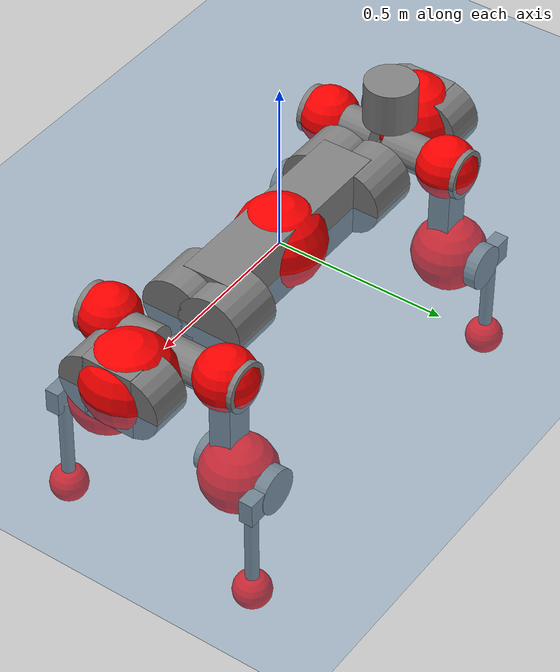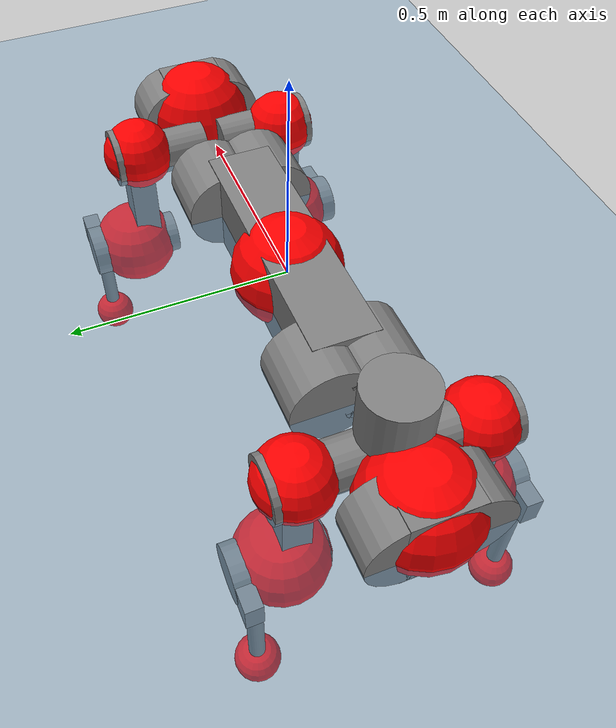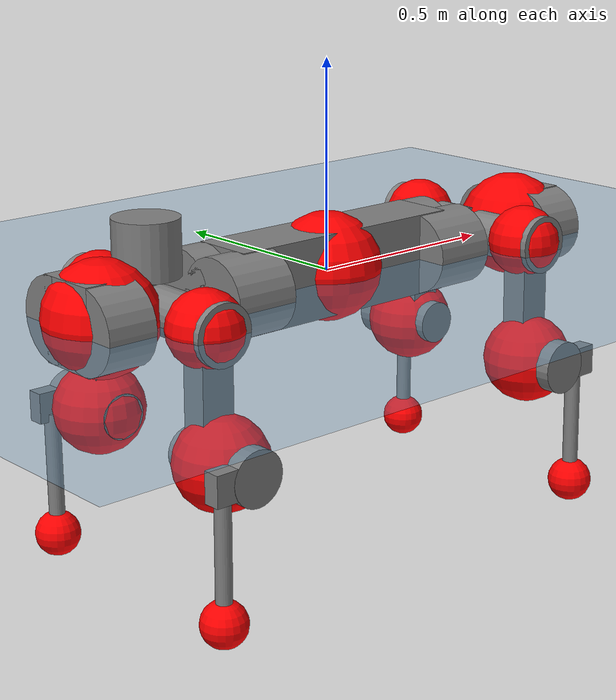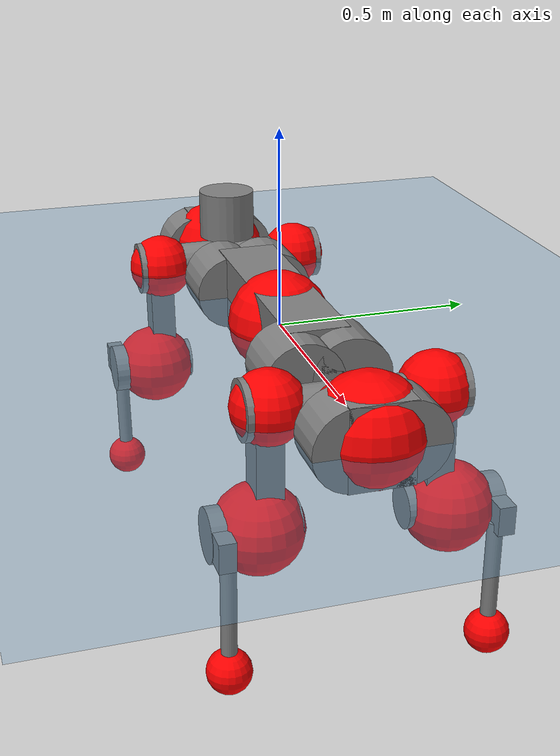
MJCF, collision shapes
<mujoco model="anymal_c">
  <compiler angle="radian" assetdir="assets" balanceinertia="true" inertiafromgeom="false"/>

  <option timestep="0.005" density="1.2" viscosity="2e-05"/>

  <size nkey="1"/>

  <visual>
    <quality shadowsize="8192"/>
    <map shadowclip="0.5"/>
  </visual>

  <default>
    <default class="/">
      <material specular="0" shininess="0.25"/>
      <geom contype="0" conaffinity="0" group="1" solref="-1000 -80"/>
      <site size="0.01 0.005 0.005" group="5"/>
      <general forcelimited="true" forcerange="-80 80" biastype="affine" gainprm="80" biasprm="0 -80 -2"/>
      <default class="anymal_c">
        <joint armature="0.01" damping="0.01" frictionloss="0.1"/>
        <default class="visual">
          <geom type="mesh" group="2"/>
          <default class="visual_zflip"/>
        </default>
        <default class="collision">
          <geom type="cylinder" group="3"/>
          <default class="foot">
            <geom size="0.03 0 0" type="sphere" condim="6" priority="1" friction="0.8 0.02 0.01" solimp="0.015 1 0.03"/>
          </default>
        </default>
      </default>
      <default class="reward_collision_sphere">
        <geom group="5" rgba="1 0 0 1"/>
      </default>
    </default>
  </default>

  <asset>
    <texture type="skybox" colorspace="auto" name="//unnamed_texture_0" builtin="gradient" rgb1="0.95 0.95 0.95" rgb2="0.95 0.95 0.95" width="100" height="600"/>
    <texture type="2d" colorspace="auto" name="texplane" builtin="checker" rgb1="0.345 0.575 0.748" rgb2="0.345 0.575 0.748" markrgb="1 1 1" width="512" height="512"/>
    <texture type="2d" colorspace="linear" name="base" file="base.png"/>
    <texture type="2d" colorspace="linear" name="top_shell" file="top_shell.png"/>
    <texture type="2d" colorspace="linear" name="bottom_shell" file="bottom_shell.png"/>
    <texture type="2d" colorspace="linear" name="remote" file="remote.png"/>
    <texture type="2d" colorspace="linear" name="hatch" file="hatch.png"/>
    <texture type="2d" colorspace="linear" name="handle" file="handle.png"/>
    <texture type="2d" colorspace="linear" name="face" file="face.png"/>
    <texture type="2d" colorspace="linear" name="battery" file="battery.png"/>
    <texture type="2d" colorspace="linear" name="lidar_cage" file="lidar_cage.png"/>
    <texture type="2d" colorspace="linear" name="depth_camera" file="depth_camera.png"/>
    <texture type="2d" colorspace="linear" name="wide_angle_camera" file="wide_angle_camera.png"/>
    <texture type="2d" colorspace="linear" name="lidar" file="lidar.png"/>
    <texture type="2d" colorspace="linear" name="drive" file="drive.png"/>
    <texture type="2d" colorspace="linear" name="hip_l" file="hip_l.png"/>
    <texture type="2d" colorspace="linear" name="shank_l" file="shank_l.png"/>
    <texture type="2d" colorspace="linear" name="foot" file="foot.png"/>
    <texture type="2d" colorspace="linear" name="thigh" file="thigh.png"/>
    <texture type="2d" colorspace="linear" name="shank_r" file="shank_r.png"/>
    <texture type="2d" colorspace="linear" name="hip_r" file="hip_r.png"/>
    <material name="MatPlane" class="/" texture="texplane" texuniform="true" texrepeat="2 2" specular="0.9" shininess="0.5"/>
    <material name="black_plastic" class="/" rgba="0.007 0.007 0.007 1"/>
    <material name="green" class="/" rgba="0.052 0.178 0.033 1"/>
    <material name="red" class="/" rgba="0.178 0.006 0.005 1"/>
    <material name="yellow" class="/" rgba="0.178 0.119 0.006 1"/>
    <material name="lwl" class="/" rgba="0.8 0.8 0.8 1"/>
    <material name="base" class="/" texture="base"/>
    <material name="top_shell" class="/" texture="top_shell"/>
    <material name="bottom_shell" class="/" texture="bottom_shell"/>
    <material name="hip_l" class="/" texture="hip_l"/>
    <material name="thigh" class="/" texture="thigh"/>
    <material name="shank_l" class="/" texture="shank_l"/>
    <material name="foot" class="/" texture="foot"/>
    <material name="hip_r" class="/" texture="hip_r"/>
    <material name="shank" class="/" texture="shank_r"/>
    <material name="hatch" class="/" texture="hatch"/>
    <material name="remote" class="/" texture="remote"/>
    <material name="handle" class="/" texture="handle"/>
    <material name="face" class="/" texture="face"/>
    <material name="depth_camera" class="/" texture="depth_camera"/>
    <material name="wide_angle_camera" class="/" texture="wide_angle_camera"/>
    <material name="battery" class="/" texture="battery"/>
    <material name="lidar_cage" class="/" texture="lidar_cage"/>
    <material name="lidar" class="/" texture="lidar"/>
    <material name="drive" class="/" texture="drive"/>
    <mesh name="base_0" class="/" file="base_0.obj"/>
    <mesh name="base_1" class="/" file="base_1.obj"/>
    <mesh name="base_2" class="/" file="base_2.obj"/>
    <mesh name="base_3" class="/" file="base_3.obj"/>
    <mesh name="base_4" class="/" file="base_4.obj"/>
    <mesh name="base_5" class="/" file="base_5.obj"/>
    <mesh name="top_shell" class="/" file="top_shell.obj"/>
    <mesh name="bottom_shell" class="/" file="bottom_shell.obj"/>
    <mesh name="remote" class="/" file="remote.obj"/>
    <mesh name="handle" class="/" file="handle.obj"/>
    <mesh name="face" class="/" file="face.obj"/>
    <mesh name="wide_angle_camera" class="/" file="wide_angle_camera.obj"/>
    <mesh name="depth_camera" class="/" file="depth_camera.obj"/>
    <mesh name="battery" class="/" file="battery.obj"/>
    <mesh name="lidar_cage" class="/" file="lidar_cage.obj"/>
    <mesh name="lidar" class="/" file="lidar.obj"/>
    <mesh name="drive" class="/" file="drive.obj"/>
    <mesh name="hip_l" class="/" file="hip_l.obj"/>
    <mesh name="thigh" class="/" file="thigh.obj"/>
    <mesh name="shank_l" class="/" file="shank_l.obj"/>
    <mesh name="foot" class="/" file="foot.obj"/>
    <mesh name="hip_r" class="/" file="hip_r.obj"/>
    <mesh name="hatch" class="/" file="hatch.obj"/>
    <mesh name="shank_r" class="/" file="shank_r.obj"/>
  </asset>

  <worldbody>
    <geom name="floor" class="/" size="100 100 0.125" type="plane" group="0" material="MatPlane"/>
    <light name="toplight_shadow" class="/" pos="0 0 5" dir="0.0990148 0.0990148 -0.990148" type="directional" ambient="0.04 0.04 0.04" diffuse="0.55 0.55 0.55" specular="0.12 0.12 0.12"/>
    <light name="toplight_fill" class="/" pos="0 0 5" dir="0.0990148 0.0990148 -0.990148" type="directional" castshadow="false" ambient="0.04 0.04 0.04" diffuse="0.3 0.3 0.3" specular="0.08 0.08 0.08"/>
    <body name="trunk" childclass="anymal_c" pos="0.000729277 -3.312e-05 0.00998792" quat="1 2.17619e-05 0.000102431 -6.36206e-06">
      <inertial pos="0.00252527 -0.0138305 0.0400628" quat="0.502945 0.500897 0.497438 0.498703" mass="25.8607" diaginertia="3.56414 0.243232 0.258795"/>
      <joint name="//unnamed_joint_0" type="free" armature="0" damping="0" frictionloss="0"/>
      <geom name="//unnamed_geom_1" class="visual" material="green" mesh="base_0"/>
      <geom name="//unnamed_geom_2" class="visual" material="yellow" mesh="base_1"/>
      <geom name="//unnamed_geom_3" class="visual" material="red" mesh="base_2"/>
      <geom name="//unnamed_geom_4" class="visual" material="black_plastic" mesh="base_3"/>
      <geom name="//unnamed_geom_5" class="visual" material="lwl" mesh="base_4"/>
      <geom name="//unnamed_geom_6" class="visual" material="base" mesh="base_5"/>
      <geom name="trunk_1" class="collision" size="0.315861 0.0762422 0.0980257" type="box"/>
      <geom name="trunk_2" class="collision" size="0.0980257 0.0789651" pos="0.311828 0.057185 0" quat="0.707107 0 0.707107 0"/>
      <geom name="trunk_3" class="collision" size="0.0980257 0.0789651" pos="-0.311828 0.057185 0" quat="0.707107 0 0.707107 0"/>
      <geom name="trunk_4" class="collision" size="0.0980257 0.0789651" pos="0.311828 -0.057185 0" quat="0.707107 0 0.707107 0"/>
      <geom name="trunk_5" class="collision" size="0.0980257 0.0789651" pos="-0.311828 -0.057185 0" quat="0.707107 0 0.707107 0"/>
      <geom name="//unnamed_geom_12" class="visual" material="top_shell" mesh="top_shell"/>
      <geom name="//unnamed_geom_13" class="visual" material="bottom_shell" mesh="bottom_shell"/>
      <geom name="//unnamed_geom_14" class="visual" material="remote" mesh="remote"/>
      <geom name="//unnamed_geom_15" class="visual" material="handle" mesh="handle"/>
      <geom name="//unnamed_geom_16" class="visual" pos="0.594266 0 0" quat="1 0 0 0" material="face" mesh="face"/>
      <geom name="trunk_6" class="collision" size="0.0599046 0.0762422 0.0980257" pos="0.673119 0 0" type="box"/>
      <geom name="//unnamed_geom_18" class="collision" size="0.0980257 0.0599046" pos="0.673119 0.057185 0" quat="0.707107 0 0.707107 0"/>
      <geom name="//unnamed_geom_19" class="collision" size="0.0980257 0.0599046" pos="0.673119 -0.057185 0" quat="0.707107 0 0.707107 0"/>
      <geom name="//unnamed_geom_20" class="visual" pos="0.661847 0 -0.0265259" quat="0.965926 0 0.258819 0" material="depth_camera" mesh="depth_camera"/>
      <geom name="//unnamed_geom_21" class="visual" pos="0.735485 0 0.015223" material="wide_angle_camera" mesh="wide_angle_camera"/>
      <geom name="//unnamed_geom_22" class="visual_zflip" pos="-0.594266 0 0" quat="0 0 0 1" material="face" mesh="face"/>
      <geom name="trunk_7" class="collision" size="0.0599046 0.0762422 0.0980257" pos="-0.673119 0 0" quat="0 0 0 1" type="box"/>
      <geom name="//unnamed_geom_24" class="collision" size="0.0980257 0.0599046" pos="-0.673119 -0.057185 0" quat="0 -0.707107 0 0.707107"/>
      <geom name="//unnamed_geom_25" class="collision" size="0.0980257 0.0599046" pos="-0.673119 0.057185 0" quat="0 -0.707107 0 0.707107"/>
      <geom name="//unnamed_geom_26" class="visual" pos="-0.661847 0 -0.0265259" quat="0 -0.258819 0 0.965926" material="depth_camera" mesh="depth_camera"/>
      <geom name="//unnamed_geom_27" class="visual_zflip" pos="-0.735485 0 0.015223" quat="0 0 0 1" material="wide_angle_camera" mesh="wide_angle_camera"/>
      <geom name="//unnamed_geom_28" class="visual" material="battery" mesh="battery"/>
      <geom name="//unnamed_geom_29" class="visual" pos="0 0.0543518 0.0327086" quat="0.683013 -0.183013 0.183013 0.683013" material="depth_camera" mesh="depth_camera"/>
      <geom name="//unnamed_geom_30" class="visual" pos="0 -0.0543518 0.0327086" quat="0.683013 0.183013 0.183013 -0.683013" material="depth_camera" mesh="depth_camera"/>
      <geom name="//unnamed_geom_31" class="visual" pos="-0.521864 0 0.0747423" quat="1 0 0 0" material="lidar_cage" mesh="lidar_cage"/>
      <geom name="trunk_8" class="collision" size="0.0762422 0.0653505" pos="-0.521864 0 0.135756"/>
      <geom name="//unnamed_geom_33" class="visual" pos="-0.521864 -0.00024231 0.144603" quat="0.707107 0 0 -0.707107" material="lidar" mesh="lidar"/>
      <geom name="//unnamed_geom_34" class="visual" pos="0.429965 0.0850316 -3.44956e-09" quat="0.258819 0.965926 0 0" material="drive" mesh="drive"/>
      <geom name="//unnamed_geom_35" class="visual" pos="0.429965 -0.0850316 3.44956e-09" quat="0.258819 -0.965926 0 0" material="drive" mesh="drive"/>
      <geom name="//unnamed_geom_36" class="visual" pos="-0.429965 0.0850316 3.44956e-09" quat="0 0 0.965926 -0.258819" material="drive" mesh="drive"/>
      <geom name="//unnamed_geom_37" class="visual" pos="-0.429965 -0.0850316 -3.44956e-09" quat="0 0 -0.965926 -0.258819" material="drive" mesh="drive"/>
      <geom name="//unnamed_geom_38" class="visual" pos="0.166308 0 0.0742338" quat="1 0 0 0" material="hatch" mesh="hatch"/>
      <geom name="//unnamed_geom_39" class="reward_collision_sphere" size="0.130701"/>
      <geom name="//unnamed_geom_40" class="reward_collision_sphere" size="0.130701" pos="0.645162 0 0"/>
      <geom name="//unnamed_geom_41" class="reward_collision_sphere" size="0.130701" pos="-0.645162 0 0"/>
      <site name="imu" pos="0.329546 0.0466509 0.0180386" size="0.0108917"/>
      <camera name="track" pos="0 -1.63386 0" quat="0.707107 0.707107 0 0" mode="trackcom"/>
      <camera name="ego_camera" pos="0.645162 0 -0.0406761" quat="-0.5 -0.5 0.5 0.5"/>
      <body name="LF_HIP" pos="0.430544 0.0938401 -0.00141135" quat="0.258631 0.965974 0.000483265 0.00207197">
        <inertial pos="0.0934373 -0.0121629 -0.000769182" quat="-0.131378 0.705861 -0.125577 0.684639" mass="4.00696" diaginertia="0.0377231 0.00207806 0.00339882"/>
        <joint name="LF_HAA" pos="0 0 0" axis="0.999998 0.00168303 -0.000551869" range="-0.588806 0.50857" armature="0.00575533" damping="0" frictionloss="0.172664"/>
        <geom name="//unnamed_geom_42" class="visual" pos="0 -0.000202922 3.33298e-05" quat="0.258819 -0.965926 0 0" material="hip_l" mesh="hip_l"/>
        <geom name="//unnamed_geom_43" class="visual" pos="0.0858783 -0.0960102 -0.0569106" quat="0.183013 -0.683013 0.683013 0.183013" material="drive" mesh="drive"/>
        <geom name="//unnamed_geom_44" class="collision" size="0.0544587 0.0762422" pos="0.0858782 -0.0097703 -0.0070217" quat="-0.353553 -0.612372 0.612372 -0.353553"/>
        <body name="LF_THIGH" pos="0.085401 -0.0572374 -0.0491868" quat="0.182942 -0.683472 0.682708 0.182507">
          <inertial pos="0.0446236 -0.000629311 -0.242019" quat="0.993351 -0.00344166 -0.0791259 0.083556" mass="4.35985" diaginertia="0.176295 0.0108691 0.00622595"/>
          <joint name="LF_HFE" pos="0 0 0" axis="0.99942 -0.0276704 -0.0198707" stiffness="0.0229406" range="-2.95579 3.00947" armature="0.0081296" damping="0.0100128" frictionloss="0.10015"/>
          <geom name="//unnamed_geom_45" class="visual" pos="0.0122712 1.93365e-05 0" quat="0.707107 0 0 -0.707107" material="thigh" mesh="thigh"/>
          <geom name="//unnamed_geom_46" class="collision" size="0.0707963 0.043567" pos="0.0573477 0 0" quat="0.5 0.5 -0.5 -0.5"/>
          <geom name="//unnamed_geom_47" class="collision" size="0.040844 0.0326752 0.153916" pos="0.0430108 0 -0.143702" quat="0.707107 0 0 -0.707107" type="box"/>
          <geom name="//unnamed_geom_48" class="visual" pos="0.143799 0 -0.289817" quat="1 0 0 0" material="drive" mesh="drive"/>
          <geom name="//unnamed_geom_49" class="collision" size="0.0544587 0.0762422" pos="0.0434409 0 -0.289817" quat="0.707107 0 0.707107 0"/>
          <geom name="//unnamed_geom_50" class="reward_collision_sphere" size="0.087134" pos="0.0358423 0 0"/>
          <body name="LF_SHANK" pos="0.150373 -0.0098071 -0.300518" quat="0.999978 0.00524251 0.000576508 -0.00403905">
            <inertial pos="0.00889289 -0.0495301 -0.0830295" quat="0.992877 -0.115761 0.00153388 -0.0281427" mass="0.920434" diaginertia="0.0602795 0.00346794 0.00135785"/>
            <joint name="LF_KFE" pos="0 0 0" axis="0.999781 0.0208591 0.00138809" range="-3.18189 3.19935" armature="0.014853" damping="0" frictionloss="0.163477"/>
            <geom name="//unnamed_geom_51" class="visual" pos="0.00400137 0.0213355 0" quat="0.707107 0 0 -0.707107" material="shank_l" mesh="shank_l"/>
            <geom name="LF_kfe_act" class="collision" size="0.0653505 0.0217835" pos="0.0286739 0 0" quat="0.5 0.5 -0.5 -0.5"/>
            <geom name="//unnamed_geom_53" class="collision" size="0.0626264 0.0367596 0.0206943" pos="0.0286739 -0.0469726 0" quat="0.5 0.5 -0.5 -0.5" type="box"/>
            <geom name="//unnamed_geom_54" class="visual" pos="0.0187087 -0.0649733 -0.343682" quat="0.382683 0 0 -0.92388" material="foot" mesh="foot"/>
            <geom name="LF_calf" class="collision" size="0.0190606 0.153848" pos="0.0187097 -0.0718488 -0.171841" quat="0.707107 0 0 -0.707107"/>
            <geom name="LF_foot" class="foot" size="0.0188197" pos="0.0187097 -0.0718488 -0.320802" quat="0.707107 0 0 -0.707107"/>
            <geom name="//unnamed_geom_57" class="reward_collision_sphere" size="0.108917" pos="-0.0716847 0 0"/>
            <geom name="//unnamed_geom_58" class="reward_collision_sphere" size="0.0544587" pos="0.0187097 -0.0718488 -0.320802"/>
            <site name="LF_foot" class="foot" pos="0.0187097 -0.0718488 -0.320802" quat="0.707107 0 0 -0.707107" size="0.0108917"/>
          </body>
        </body>
      </body>
      <body name="RF_HIP" pos="0.424707 -0.0765312 -0.000592293" quat="0.257161 -0.966353 -0.00543637 -0.000564062">
        <inertial pos="0.0806228 0.0101031 -0.00565606" quat="0.134357 0.678536 0.131791 0.710048" mass="3.91293" diaginertia="0.0416974 0.00226544 0.00348096"/>
        <joint name="RF_HAA" pos="0 0 0" axis="0.999998 0.000593703 -0.001748" range="-0.707655 0.983707" armature="0.0108126" damping="0" frictionloss="0.15824"/>
        <geom name="//unnamed_geom_59" class="visual" pos="0 0.00020292 3.33297e-05" quat="0.258819 0.965926 0 0" material="hip_r" mesh="hip_r"/>
        <geom name="//unnamed_geom_60" class="visual" pos="0.0858782 0.0960102 -0.0569106" quat="0.183013 0.683013 0.683013 -0.183013" material="drive" mesh="drive"/>
        <geom name="//unnamed_geom_61" class="collision" size="0.0544587 0.0762422" pos="0.0858782 0.0097703 -0.0070217" quat="-0.353553 0.612372 0.612372 0.353553"/>
        <body name="RF_THIGH" pos="0.0712628 0.0511719 -0.0402739" quat="0.183554 0.682938 0.682358 -0.18518">
          <inertial pos="0.0442393 0.00230227 -0.2499" quat="0.993288 -0.00499805 -0.0780978 0.0851758" mass="3.52223" diaginertia="0.173702 0.00956757 0.00355047"/>
          <joint name="RF_HFE" pos="0 0 0" axis="0.997706 -0.0187126 0.0650582" stiffness="0.00969935" range="-3.44282 3.40463" armature="0.0109867" damping="0.0581644" frictionloss="0.12963"/>
          <geom name="//unnamed_geom_62" class="visual" pos="0.0122712 1.93365e-05 0" quat="0.707107 0 0 -0.707107" material="thigh" mesh="thigh"/>
          <geom name="//unnamed_geom_63" class="collision" size="0.0707963 0.043567" pos="0.0573477 0 0" quat="0.5 0.5 0.5 0.5"/>
          <geom name="//unnamed_geom_64" class="collision" size="0.040844 0.0326752 0.153916" pos="0.0430108 0 -0.143702" quat="0.707107 0 0 0.707107" type="box"/>
          <geom name="//unnamed_geom_65" class="visual" pos="0.143799 0 -0.289817" quat="1 0 0 0" material="drive" mesh="drive"/>
          <geom name="//unnamed_geom_66" class="collision" size="0.0544587 0.0762422" pos="0.0434409 0 -0.289817" quat="0.707107 0 0.707107 0"/>
          <geom name="//unnamed_geom_67" class="reward_collision_sphere" size="0.087134" pos="0.0358423 0 0"/>
          <body name="RF_SHANK" pos="0.130213 -0.00341155 -0.297393" quat="0.999999 -0.000124654 -0.00134723 0.000800347">
            <inertial pos="0.0138096 0.0538218 -0.0964611" quat="0.991326 0.12946 -0.0168938 0.0150758" mass="0.918357" diaginertia="0.0556961 0.00340282 0.00123144"/>
            <joint name="RF_KFE" pos="0 0 0" axis="0.99708 -0.0161674 0.0746324" stiffness="0.0275131" range="-3.23004 3.37347" armature="0.0119187" damping="0" frictionloss="0.191516"/>
            <geom name="//unnamed_geom_68" class="visual" pos="0.00400135 -0.0213355 0" quat="0.707107 0 0 0.707107" material="shank" mesh="shank_r"/>
            <geom name="RF_kfe_act" class="collision" size="0.0653505 0.0217835" pos="0.0286739 0 0" quat="0.5 0.5 0.5 0.5"/>
            <geom name="//unnamed_geom_70" class="collision" size="0.0626264 0.0367596 0.0206943" pos="0.0286739 0.0469726 0" quat="0.5 0.5 0.5 0.5" type="box"/>
            <geom name="//unnamed_geom_71" class="visual" pos="0.0187107 0.0649733 -0.343682" quat="0.382683 0 0 0.92388" material="foot" mesh="foot"/>
            <geom name="RF_calf" class="collision" size="0.0190606 0.153848" pos="0.0187097 0.0718488 -0.171841" quat="0.707107 0 0 0.707107"/>
            <geom name="RF_foot" class="foot" size="0.0282834" pos="0.0187097 0.0718488 -0.320802" quat="0.707107 0 0 0.707107"/>
            <geom name="//unnamed_geom_74" class="reward_collision_sphere" size="0.108917" pos="-0.0716847 0 0"/>
            <geom name="//unnamed_geom_75" class="reward_collision_sphere" size="0.0544587" pos="0.0187097 0.0718488 -0.320802"/>
            <site name="RF_foot" class="foot" pos="0.0187097 0.0718488 -0.320802" quat="0.707107 0 0 0.707107" size="0.0108917"/>
          </body>
        </body>
      </body>
      <body name="LH_HIP" pos="-0.426309 0.0747492 -0.00133023" quat="0.000707864 0.000616687 0.965994 -0.258562">
        <inertial pos="0.0887005 0.0243814 -0.0112739" quat="0.108265 0.671008 0.0573999 0.731254" mass="4.27381" diaginertia="0.0330111 0.00157808 0.00386494"/>
        <joint name="LH_HAA" pos="0 0 0" axis="0.998731 0.0348594 0.0363405" stiffness="0.0527944" range="-0.565806 0.865708" armature="0.0114553" damping="0.0547525" frictionloss="0.0677213"/>
        <geom name="//unnamed_geom_76" class="visual" pos="0 0.00020292 3.33297e-05" quat="-0.258819 -0.965926 0 0" material="hip_r" mesh="hip_r"/>
        <geom name="//unnamed_geom_77" class="visual" pos="0.0858782 0.0960102 -0.0569106" quat="0.183013 0.683013 0.683013 -0.183013" material="drive" mesh="drive"/>
        <geom name="//unnamed_geom_78" class="collision" size="0.0544587 0.0762422" pos="0.0858782 0.0097703 -0.0070217" quat="-0.353553 0.612372 0.612372 0.353553"/>
        <body name="LH_THIGH" pos="0.0860128 0.0713835 -0.0427357" quat="0.184588 0.683516 0.683013 -0.179515">
          <inertial pos="0.0495409 0.0098736 -0.250236" quat="0.993165 -0.032285 -0.0823555 0.0761438" mass="3.77078" diaginertia="0.1582 0.00996302 0.00344419"/>
          <joint name="LH_HFE" pos="0 0 0" axis="0.999995 -0.00306884 0.000239252" range="-3.16472 3.15852" armature="0.0111161" damping="0.03169" frictionloss="0.114356"/>
          <geom name="//unnamed_geom_79" class="visual" pos="0.0122712 1.93365e-05 0" quat="0.707107 0 0 -0.707107" material="thigh" mesh="thigh"/>
          <geom name="//unnamed_geom_80" class="collision" size="0.0707963 0.043567" pos="0.0573477 0 0" quat="0.5 0.5 -0.5 -0.5"/>
          <geom name="//unnamed_geom_81" class="collision" size="0.040844 0.0326752 0.153916" pos="0.0430108 0 -0.143702" quat="0.707107 0 0 -0.707107" type="box"/>
          <geom name="//unnamed_geom_82" class="visual" pos="0.143799 0 -0.289817" quat="1 0 0 0" material="drive" mesh="drive"/>
          <geom name="//unnamed_geom_83" class="collision" size="0.0544587 0.0762422" pos="0.0434409 0 -0.289817" quat="0.707107 0 0.707107 0"/>
          <geom name="//unnamed_geom_84" class="reward_collision_sphere" size="0.087134" pos="0.0358423 0 0"/>
          <body name="LH_SHANK" pos="0.133225 0.000480959 -0.291196" quat="0.999983 0.00469825 0.00321053 -0.000971472">
            <inertial pos="-0.00302795 0.05534 -0.0724505" quat="0.992924 0.116175 -0.00284405 0.0244228" mass="0.705816" diaginertia="0.0524865 0.00225834 0.000784899"/>
            <joint name="LH_KFE" pos="0 0 0" axis="0.999034 0.00958634 -0.042886" stiffness="0.00169912" range="-3.16652 3.45646" armature="0.010924" damping="0" frictionloss="0.0696898"/>
            <geom name="//unnamed_geom_85" class="visual" pos="0.00400135 -0.0213355 0" quat="-0.707107 0 0 -0.707107" material="shank" mesh="shank_r"/>
            <geom name="LH_kfe_act" class="collision" size="0.0653505 0.0217835" pos="0.0286739 0 0" quat="0.5 0.5 -0.5 -0.5"/>
            <geom name="//unnamed_geom_87" class="collision" size="0.0626264 0.0367596 0.0206943" pos="0.0286739 0.0469726 0" quat="0.5 0.5 -0.5 -0.5" type="box"/>
            <geom name="//unnamed_geom_88" class="visual" pos="0.0187107 0.0649733 -0.343682" quat="-0.382683 0 0 -0.92388" material="foot" mesh="foot"/>
            <geom name="LH_calf" class="collision" size="0.0190606 0.153848" pos="0.0187097 0.0718488 -0.171841" quat="0.707107 0 0 -0.707107"/>
            <geom name="LH_foot" class="foot" size="0.0494851" pos="0.0187097 0.0718488 -0.320802" quat="0.707107 0 0 -0.707107"/>
            <geom name="//unnamed_geom_91" class="reward_collision_sphere" size="0.108917" pos="-0.0716847 0 0"/>
            <geom name="//unnamed_geom_92" class="reward_collision_sphere" size="0.0544587" pos="0.0187097 0.0718488 -0.320802"/>
            <site name="LH_foot" class="foot" pos="0.0187097 0.0718488 -0.320802" quat="0.707107 0 0 -0.707107" size="0.0108917"/>
          </body>
        </body>
      </body>
      <body name="RH_HIP" pos="-0.430823 -0.0959871 0.000829958" quat="-0.00187971 -0.0041666 -0.964849 -0.262765">
        <inertial pos="0.077633 -0.0197855 -0.00173764" quat="-0.168155 0.698181 -0.196956 0.66744" mass="4.22834" diaginertia="0.0352036 0.00217916 0.0039413"/>
        <joint name="RH_HAA" pos="0 0 0" axis="0.999639 0.00354893 0.0266335" stiffness="0.0229848" range="-0.47964 0.41178" armature="0.0182355" damping="0.0212738" frictionloss="0.0605086"/>
        <geom name="//unnamed_geom_93" class="visual" pos="0 -0.000202922 3.33298e-05" quat="-0.258819 0.965926 0 0" material="hip_l" mesh="hip_l"/>
        <geom name="//unnamed_geom_94" class="visual" pos="0.0858783 -0.0960102 -0.0569106" quat="-0.183013 0.683013 -0.683013 -0.183013" material="drive" mesh="drive"/>
        <geom name="//unnamed_geom_95" class="collision" size="0.0544587 0.0762422" pos="0.0858782 -0.0097703 -0.0070217" quat="0.353553 0.612372 -0.612372 0.353553"/>
        <body name="RH_THIGH" pos="0.088125 -0.0590701 -0.0287503" quat="-0.183253 0.682914 -0.683288 -0.182107">
          <inertial pos="0.0447835 -0.015377 -0.258052" quat="0.987493 -0.0266272 -0.131061 0.0834978" mass="4.66586" diaginertia="0.220618 0.0129539 0.00552821"/>
          <joint name="RH_HFE" pos="0 0 0" axis="0.998963 -0.0442602 0.0106573" range="-3.26731 3.40736" armature="0.00187823" damping="0" frictionloss="0.0818458"/>
          <geom name="//unnamed_geom_96" class="visual" pos="0.0122712 1.93365e-05 0" quat="0.707107 0 0 -0.707107" material="thigh" mesh="thigh"/>
          <geom name="//unnamed_geom_97" class="collision" size="0.0707963 0.043567" pos="0.0573477 0 0" quat="0.5 0.5 0.5 0.5"/>
          <geom name="//unnamed_geom_98" class="collision" size="0.040844 0.0326752 0.153916" pos="0.0430108 0 -0.143702" quat="0.707107 0 0 0.707107" type="box"/>
          <geom name="//unnamed_geom_99" class="visual" pos="0.143799 0 -0.289817" quat="1 0 0 0" material="drive" mesh="drive"/>
          <geom name="//unnamed_geom_100" class="collision" size="0.0544587 0.0762422" pos="0.0434409 0 -0.289817" quat="0.707107 0 0.707107 0"/>
          <geom name="//unnamed_geom_101" class="reward_collision_sphere" size="0.087134" pos="0.0358423 0 0"/>
          <body name="RH_SHANK" pos="0.142271 0.0109464 -0.292518" quat="0.999987 0.001053 0.00115089 0.00490674">
            <inertial pos="0.000492292 -0.0504257 -0.0829579" quat="0.986868 -0.154278 0.0470823 0.00860075" mass="0.965242" diaginertia="0.0646219 0.00389669 0.00107345"/>
            <joint name="RH_KFE" pos="0 0 0" axis="0.997891 0.0384707 0.0522792" range="-3.36282 2.88746" armature="0.0111903" damping="0.00960574" frictionloss="0.0952743"/>
            <geom name="//unnamed_geom_102" class="visual" pos="0.00400137 0.0213355 0" quat="0.707107 0 0 -0.707107" material="shank_l" mesh="shank_l"/>
            <geom name="RH_kfe_act" class="collision" size="0.0653505 0.0217835" pos="0.0286739 0 0" quat="0.5 0.5 0.5 0.5"/>
            <geom name="//unnamed_geom_104" class="collision" size="0.0626264 0.0367596 0.0206943" pos="0.0286739 -0.0469726 0" quat="0.5 0.5 0.5 0.5" type="box"/>
            <geom name="//unnamed_geom_105" class="visual" pos="0.0187087 -0.0649733 -0.343682" quat="0.382683 0 0 -0.92388" material="foot" mesh="foot"/>
            <geom name="RH_calf" class="collision" size="0.0190606 0.153848" pos="0.0187097 -0.0718488 -0.171841" quat="0.707107 0 0 0.707107"/>
            <geom name="RH_foot" class="foot" size="0.0512732" pos="0.0187097 -0.0718488 -0.320802" quat="0.707107 0 0 0.707107"/>
            <geom name="//unnamed_geom_108" class="reward_collision_sphere" size="0.108917" pos="-0.0716847 0 0"/>
            <geom name="//unnamed_geom_109" class="reward_collision_sphere" size="0.0544587" pos="0.0187097 -0.0718488 -0.320802"/>
            <site name="RH_foot" class="foot" pos="0.0187097 -0.0718488 -0.320802" quat="0.707107 0 0 0.707107" size="0.0108917"/>
          </body>
        </body>
      </body>
    </body>
  </worldbody>

  <contact>
    <pair class="/" geom1="floor" geom2="LF_foot" name="//unnamed_contact_0"/>
    <pair class="/" geom1="floor" geom2="RF_foot" name="//unnamed_contact_1"/>
    <pair class="/" geom1="floor" geom2="LH_foot" name="//unnamed_contact_2"/>
    <pair class="/" geom1="floor" geom2="RH_foot" name="//unnamed_contact_3"/>
  </contact>

  <actuator>
    <general name="LF_HAA" class="/" joint="LF_HAA" forcerange="-113.604 113.604" gainprm="57.7095" biasprm="0 -57.7095 -1.8255"/>
    <general name="LF_HFE" class="/" joint="LF_HFE" forcerange="-136.329 136.329" gainprm="57.7095" biasprm="0 -57.7095 -1.8255"/>
    <general name="LF_KFE" class="/" joint="LF_KFE" forcerange="-73.5338 73.5338" gainprm="57.7095" biasprm="0 -57.7095 -1.8255"/>
    <general name="RF_HAA" class="/" joint="RF_HAA" forcerange="-102.926 102.926" gainprm="57.7095" biasprm="0 -57.7095 -1.8255"/>
    <general name="RF_HFE" class="/" joint="RF_HFE" forcerange="-69.1524 69.1524" gainprm="57.7095" biasprm="0 -57.7095 -1.8255"/>
    <general name="RF_KFE" class="/" joint="RF_KFE" forcerange="-109.774 109.774" gainprm="57.7095" biasprm="0 -57.7095 -1.8255"/>
    <general name="LH_HAA" class="/" joint="LH_HAA" forcerange="-56.6859 56.6859" gainprm="57.7095" biasprm="0 -57.7095 -1.8255"/>
    <general name="LH_HFE" class="/" joint="LH_HFE" forcerange="-86.5516 86.5516" gainprm="57.7095" biasprm="0 -57.7095 -1.8255"/>
    <general name="LH_KFE" class="/" joint="LH_KFE" forcerange="-112.273 112.273" gainprm="57.7095" biasprm="0 -57.7095 -1.8255"/>
    <general name="RH_HAA" class="/" joint="RH_HAA" forcerange="-135.509 135.509" gainprm="57.7095" biasprm="0 -57.7095 -1.8255"/>
    <general name="RH_HFE" class="/" joint="RH_HFE" forcerange="-97.018 97.018" gainprm="57.7095" biasprm="0 -57.7095 -1.8255"/>
    <general name="RH_KFE" class="/" joint="RH_KFE" forcerange="-98.8676 98.8676" gainprm="57.7095" biasprm="0 -57.7095 -1.8255"/>
  </actuator>

  <sensor>
    <gyro site="imu" name="imu_angular_velocity"/>
    <velocimeter site="imu" name="imu_linear_velocity"/>
    <framelinvel objtype="site" objname="LF_foot" name="LF_foot_global_linear_velocity"/>
    <framelinvel objtype="site" objname="RF_foot" name="RF_foot_global_linear_velocity"/>
    <framelinvel objtype="site" objname="LH_foot" name="LH_foot_global_linear_velocity"/>
    <framelinvel objtype="site" objname="RH_foot" name="RH_foot_global_linear_velocity"/>
  </sensor>

  <keyframe>
    <key name="home" qpos="0 0 0.55 1 0 0 0 0 0.4 -0.8 0 -0.4 0.8 0 -0.4 0.8 0 0.4 -0.8"/>
  </keyframe>
</mujoco>
